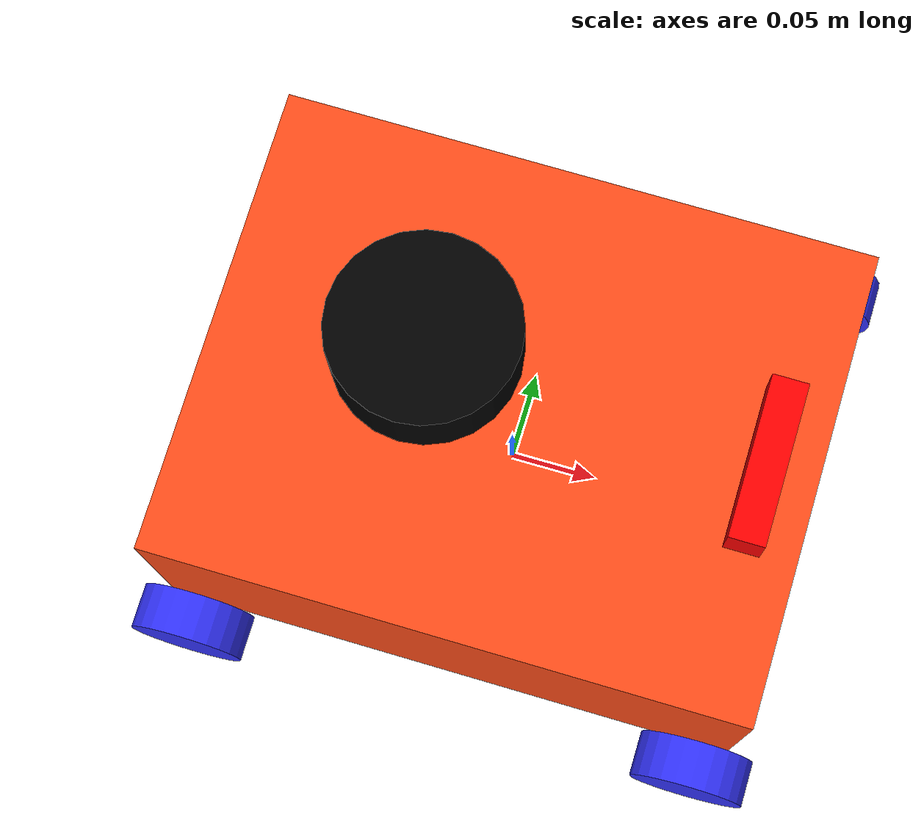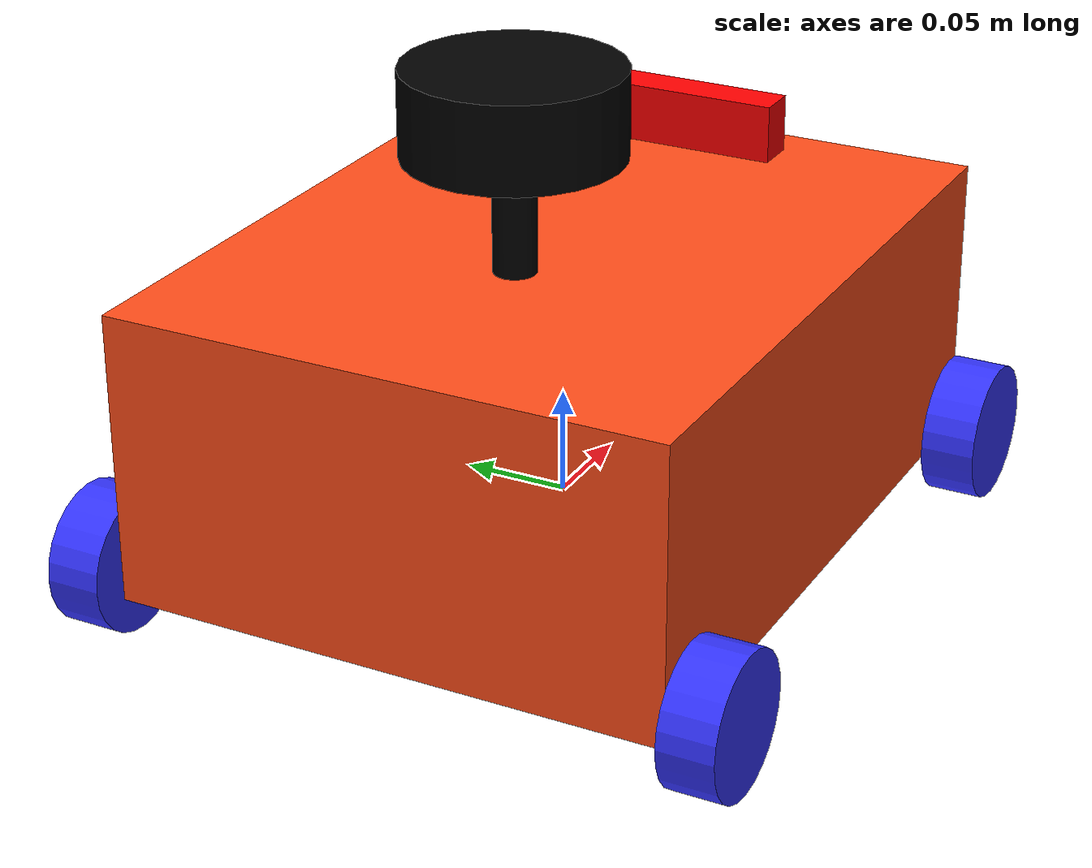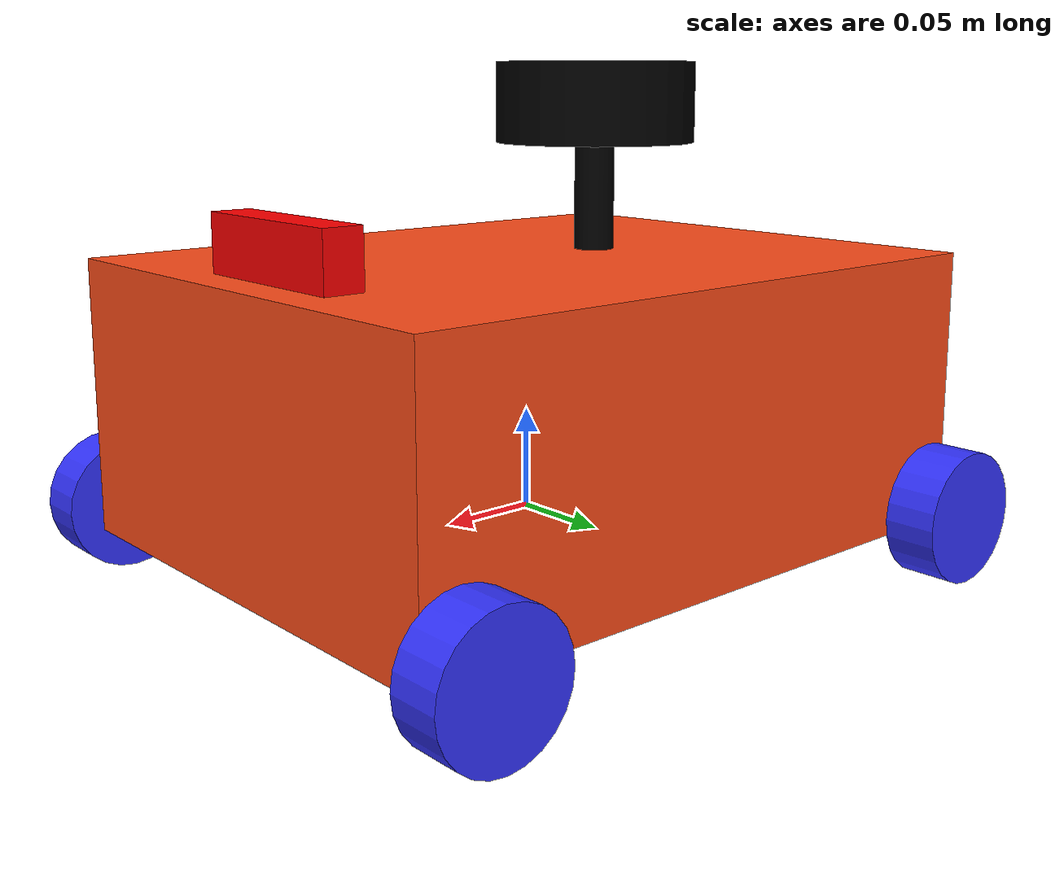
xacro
<?xml version="1.0"?>
<robot xmlns:xacro="http://www.ros.org/wiki/xacro"  name="robot">

    <xacro:arg name="use_ros2_control" default="true"/>
    <xacro:arg name="sim_mode" default="false"/>

    <xacro:include filename="robot_core_4wd.xacro" />

    <xacro:if value="$(arg use_ros2_control)">
        <xacro:include filename="ros2_control_4wd.xacro" />
    </xacro:if>
    <xacro:unless value="$(arg use_ros2_control)">
        <xacro:include filename="gazebo_control.xacro" />
    </xacro:unless>
    <xacro:include filename="lidar.xacro" />
    <xacro:include filename="depth_camera.xacro" />

</robot>

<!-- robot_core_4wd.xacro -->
<robot xmlns:xacro="http://www.ros.org/wiki/xacro" >

    <xacro:include filename="inertial_macros.xacro"/>

    <xacro:property name="chassis_length" value="0.335"/>
    <xacro:property name="chassis_width" value="0.265"/>
    <xacro:property name="chassis_height" value="0.138"/>
    <xacro:property name="chassis_mass" value="1.0"/>
    <xacro:property name="wheel_radius" value="0.033"/>
    <xacro:property name="wheel_thickness" value="0.026"/>
    <xacro:property name="wheel_mass" value="0.05"/>
    <xacro:property name="wheel_offset_x" value="0.15"/>
    <xacro:property name="wheel_offset_y" value="0.1485"/>
    <xacro:property name="wheel_offset_z" value="0.01"/>
    <xacro:property name="caster_wheel_radius" value="0.01"/>
    <xacro:property name="caster_wheel_mass" value="0.01"/>
    <xacro:property name="caster_wheel_offset_x" value="0.075"/>
    <xacro:property name="caster_wheel_offset_z" value="${wheel_offset_z - wheel_radius + caster_wheel_radius}"/>

    <material name="white">
        <color rgba="1 1 1 1" />
    </material>

    <material name="orange">
        <color rgba="1 0.3 0.1 1"/>
    </material>

    <material name="blue">
        <color rgba="0.2 0.2 1 1"/>
    </material>

    <material name="black">
        <color rgba="0 0 0 1"/>
    </material>

    <material name="red">
        <color rgba="1 0 0 1"/>
    </material>

    <!-- BASE LINK -->

    <link name="base_link">

    </link>

    <!-- BASE_FOOTPRINT LINK -->

    <joint name="base_footprint_joint" type="fixed">
        <parent link="base_link"/>
        <child link="base_footprint"/>
        <origin xyz="0 0 0" rpy="0 0 0"/>
    </joint>

    <link name="base_footprint">
    </link>

    <!-- CHASSIS LINK -->

    <joint name="chassis_joint" type="fixed">
        <parent link="base_link"/>
        <child link="chassis"/>
        <origin xyz="${-chassis_length/2} 0 ${-wheel_offset_z}"/>
    </joint>

    <link name="chassis">
        <visual>
            <origin xyz="${chassis_length/2} 0 ${chassis_height/2}"/>
            <geometry>
                <box size="${chassis_length} ${chassis_width} ${chassis_height}"/>
            </geometry>
            <material name="orange"/>
        </visual>
        <collision>
            <origin xyz="${chassis_length/2} 0 ${chassis_height/2}"/>
            <geometry>
                <box size="${chassis_length} ${chassis_width} ${chassis_height}"/>
            </geometry>
        </collision>
        <xacro:inertial_box mass="0.5" x="${chassis_length}" y="${chassis_width}" z="${chassis_height}">
            <origin xyz="${chassis_length/2} 0 ${chassis_height/2}" rpy="0 0 0"/>
        </xacro:inertial_box>
    </link>

    <gazebo reference="chassis">
        <material>Gazebo/Orange</material>
    </gazebo>

    <!-- LEFT FRONT WHEEL -->
    <joint name="left_front_wheel_joint" type="continuous">
        <parent link="base_link"/>
        <child link="left_front_wheel"/>
        <origin xyz="${wheel_offset_x} ${wheel_offset_y} 0" rpy="-${pi/2} 0 0"/>
        <axis xyz="0 0 1"/>
    </joint>

    <link name="left_front_wheel">
        <visual>
            <geometry>
                <cylinder radius="${wheel_radius}" length="${wheel_thickness}"/>
            </geometry>
            <material name="blue"/>
        </visual>
        <collision>
            <geometry>
                <sphere radius="${wheel_radius}"/>
            </geometry>
        </collision>
        <xacro:inertial_cylinder mass="${wheel_mass}" length="${wheel_thickness}" radius="${wheel_radius}">
            <origin xyz="0 0 0" rpy="0 0 0"/>
        </xacro:inertial_cylinder>
    </link>

    <gazebo reference="left_front_wheel">
        <material>Gazebo/Blue</material>
    </gazebo>

    <!-- LEFT BACK WHEEL -->
    <joint name="left_back_wheel_joint" type="continuous">
        <parent link="base_link"/>
        <child link="left_back_wheel"/>
        <origin xyz="${-wheel_offset_x} ${wheel_offset_y} 0" rpy="-${pi/2} 0 0"/>
        <axis xyz="0 0 1"/>
    </joint>

    <link name="left_back_wheel">
        <visual>
            <geometry>
                <cylinder radius="${wheel_radius}" length="${wheel_thickness}"/>
            </geometry>
            <material name="blue"/>
        </visual>
        <collision>
            <geometry>
                <sphere radius="${wheel_radius}"/>
            </geometry>
        </collision>
        <xacro:inertial_cylinder mass="${wheel_mass}" length="${wheel_thickness}" radius="${wheel_radius}">
            <origin xyz="0 0 0" rpy="0 0 0"/>
        </xacro:inertial_cylinder>
    </link>

    <gazebo reference="left_back_wheel">
        <material>Gazebo/Blue</material>
    </gazebo>

    <!-- RIGHT FRONT WHEEL -->
    <joint name="right_front_wheel_joint" type="continuous">
        <parent link="base_link"/>
        <child link="right_front_wheel"/>
        <origin xyz="${wheel_offset_x} ${-wheel_offset_y} 0" rpy="${pi/2} 0 0"/>
        <axis xyz="0 0 -1"/>
    </joint>

    <link name="right_front_wheel">
        <visual>
            <geometry>
                <cylinder radius="${wheel_radius}" length="${wheel_thickness}"/>
            </geometry>
            <material name="blue"/>
        </visual>
        <collision>
            <geometry>
                <sphere radius="${wheel_radius}"/>
            </geometry>
        </collision>
        <xacro:inertial_cylinder mass="${wheel_mass}" length="${wheel_thickness}" radius="${wheel_radius}">
            <origin xyz="0 0 0" rpy="0 0 0"/>
        </xacro:inertial_cylinder>
    </link>

    <gazebo reference="right_front_wheel">
        <material>Gazebo/Blue</material>
    </gazebo>

    <!-- RIGHT BACK WHEEL -->
    <joint name="right_back_wheel_joint" type="continuous">
        <parent link="base_link"/>
        <child link="right_back_wheel"/>
        <origin xyz="${-wheel_offset_x} ${-wheel_offset_y} 0" rpy="${pi/2} 0 0"/>
        <axis xyz="0 0 -1"/>
    </joint>

    <link name="right_back_wheel">
        <visual>
            <geometry>
                <cylinder radius="${wheel_radius}" length="${wheel_thickness}"/>
            </geometry>
            <material name="blue"/>
        </visual>
        <collision>
            <geometry>
                <sphere radius="${wheel_radius}"/>
            </geometry>
        </collision>
        <xacro:inertial_cylinder mass="${wheel_mass}" length="${wheel_thickness}" radius="${wheel_radius}">
            <origin xyz="0 0 0" rpy="0 0 0"/>
        </xacro:inertial_cylinder>
    </link>

    <gazebo reference="right_back_wheel">
        <material>Gazebo/Blue</material>
    </gazebo>

</robot>

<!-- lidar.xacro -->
<robot xmlns:xacro="http://www.ros.org/wiki/xacro" >

    <joint name="laser_joint" type="fixed">
        <parent link="chassis"/>
        <child link="laser_frame"/>
        <origin xyz="0.122 0 0.212" rpy="0 0 0"/>
    </joint>

    <link name="laser_frame">
        <visual>
            <geometry>
                <cylinder radius="0.05" length="0.04"/>
            </geometry>
            <material name="black"/>
        </visual>
        <visual>
            <origin xyz="0 0 -0.05"/>
            <geometry>
                <cylinder radius="0.01" length="0.1"/>
            </geometry>
            <material name="black"/>
        </visual>
        <collision>
            <geometry>
                <cylinder radius="0.05" length="0.04"/>
            </geometry>
        </collision>
        <xacro:inertial_cylinder mass="0.1" length="0.04" radius="0.05">
            <origin xyz="0 0 0" rpy="0 0 0"/>
        </xacro:inertial_cylinder>
    </link>

    <gazebo reference="laser_frame">
        <material>Gazebo/Black</material>
        <sensor name='laser_frame' type='gpu_lidar'>
            <pose relative_to='laser_frame'>0 0 0 0 0 0</pose>
            <topic>scan</topic>
            <update_rate>10</update_rate>
            <ray>
                <scan>
                    <horizontal>
                        <samples>640</samples>
                        <resolution>1</resolution>
                        <min_angle>-1.396263</min_angle>
                        <max_angle>1.396263</max_angle>
                    </horizontal>
                    <vertical>
                        <samples>1</samples>
                        <resolution>0.1</resolution>
                        <min_angle>0</min_angle>
                        <max_angle>0</max_angle>
                    </vertical>
                </scan>
                <range>
                    <min>0.08</min>
                    <max>5.0</max>
                    <resolution>0.1</resolution>
                </range>
            </ray>
            <always_on>1</always_on>
            <visualize>true</visualize>
        </sensor>

    </gazebo>
</robot>

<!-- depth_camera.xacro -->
<robot xmlns:xacro="http://www.ros.org/wiki/xacro" >

    <joint name="camera_joint" type="fixed">
        <parent link="chassis"/>
        <child link="camera_link"/>
        <origin xyz="0.305 0 0.151" rpy="0 0 0"/>
    </joint>

    <link name="camera_link">
        <visual>
            <geometry>
                <box size="0.020 0.09 0.03"/>
            </geometry>
            <material name="red"/>
        </visual>
    </link>

    <joint name="camera_optical_joint" type="fixed">
        <parent link="camera_link"/>
        <child link="camera_link_optical"/>
        <origin xyz="0 0 0" rpy="0 0 0"/>
    </joint>

    <link name="camera_link_optical"></link>

    <gazebo reference="camera_link">
        <material>Gazebo/Red</material>

        <sensor name="head_camera_depth" type="depth_camera">
            <ignition_frame_id>camera_link_optical</ignition_frame_id>
            <always_on>1</always_on>
            <update_rate>10</update_rate>
            <visualize>1</visualize>
            <topic>/head_camera/depth</topic>
            <pose relative_to='camera_link_optical'>0 0.0175 0.5125 0 -0 0</pose>
            <camera name="d435">
                <horizontal_fov>1.48702</horizontal_fov>
                <image>
                    <width>1280</width>
                    <height>720</height>
                </image>
                <clip>
                    <near>0.1</near>
                    <far>10</far>
                </clip>
                <noise>
                    <type>gaussian</type>
                    <mean>0</mean>
                    <stddev>0.1</stddev>
                </noise>
            </camera>
        </sensor>

        <sensor name="d435_color" type="camera">
            <always_on>1</always_on>
            <update_rate>30</update_rate>
            <visualize>1</visualize>
            <pose relative_to='camera_link_optical'>0 0.0175 0.5125 0 -0 0</pose>
            <topic>/head_camera/images</topic>
            <camera name="d435">
                <horizontal_fov>1.21126</horizontal_fov>
                <image>
                    <width>640</width>
                    <height>480</height>
                    <format>RGB_INT8</format>
                </image>
                <clip>
                    <near>0.1</near>
                    <far>100</far>
                </clip>
                <noise>
                    <type>gaussian</type>
                    <mean>0</mean>
                    <stddev>0.007</stddev>
                </noise>
            </camera>
	    </sensor>
    </gazebo>

</robot>
